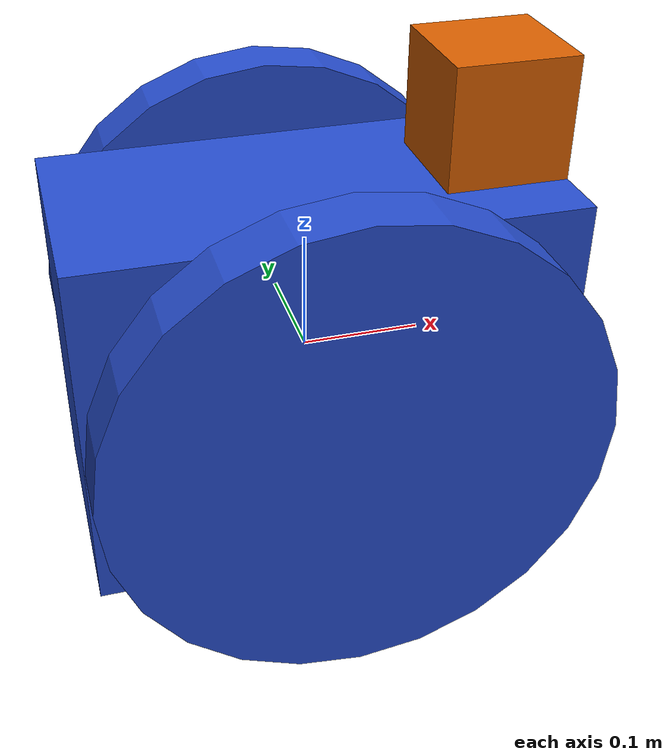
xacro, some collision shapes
<?xml version='1.0'?>

<robot name="my_robot" xmlns:xacro="http://www.ros.org/wiki/xacro">

  <xacro:include filename="$(find my_robot)/urdf/my_robot.gazebo" />

  <link name="robot_footprint"></link>

  <joint name="robot_footprint_joint" type="fixed">
    <origin xyz="0 0 0" rpy="0 0 0" />
    <parent link="robot_footprint"/>
    <child link="chassis" />
  </joint>

  <link name='chassis'>
    <pose>0 0 0.1 0 0 0</pose>

    <inertial>
      <mass value="15.0"/>
      <origin xyz="0.0 0 0" rpy=" 0 0 0"/>
      <inertia
          ixx="0.1" ixy="0" ixz="0"
          iyy="0.1" iyz="0"
          izz="0.1"
      />
    </inertial>

    <collision name='collision'>
      <origin xyz="0 0 0" rpy=" 0 0 0"/>
      <geometry>
        <box size=".4 .2 .3"/>
      </geometry>
    </collision>

    <visual name='chassis_visual'>
      <origin xyz="0 0 0" rpy=" 0 0 0"/>
      <geometry>
        <box size=".4 .2 .3"/>
      </geometry>
    </visual>

    <collision name='back_caster_collision'>
      <origin xyz="-0.15 0 -0.15" rpy=" 0 0 0"/>
      <geometry>
        <sphere radius="0.0499"/>
      </geometry>
    </collision>

    <visual name='back_caster_visual'>
      <origin xyz="-0.15 0 -0.15" rpy=" 0 0 0"/>
      <geometry>
        <sphere radius="0.05"/>
      </geometry>
    </visual>

    <collision name='front_caster_collision'>
      <origin xyz="0.15 0 -0.15" rpy=" 0 0 0"/>
      <geometry>
        <sphere radius="0.0499"/>
      </geometry>
    </collision>

    <visual name='front_caster_visual'>
      <origin xyz="0.15 0 -0.15" rpy=" 0 0 0"/>
      <geometry>
        <sphere radius="0.05"/>
      </geometry>
    </visual>
  </link>

  <link name="left_wheel">

    <visual name="left_wheel_vis">
      <origin xyz="0 0 0" rpy=" 0 1.5707 1.5707"/>
      <geometry>
        <cylinder radius="0.2" length="0.05"/>
      </geometry>
    </visual>

    <collision name='left_wheel_col'>
      <origin xyz="0 0 0" rpy=" 0 1.5707 1.5707"/>
      <geometry>
        <cylinder radius="0.2" length="0.05"/>
      </geometry>
    </collision>

    <inertial>
      <mass value="5.0"/>
      <origin xyz="0 0 0" rpy="0 0 0"/>
      <inertia
          ixx="0.1" ixy="0" ixz="0"
          iyy="0.1" iyz="0"
          izz="0.1"
      />
    </inertial>

  </link>

  <joint type="continuous" name="left_wheel_hinge">
    <origin xyz="0 0.15 0" rpy="0 0 0"/>
    <child link="left_wheel"/>
    <parent link="chassis"/>
    <axis xyz="0 1 0" rpy="0 0 0"/>
    <limit effort="10000" velocity="1000"/>
    <dynamics damping="1.0" friction="1.0"/>
  </joint>

  <link name="right_wheel">

    <visual name='right_wheel_vis'>
      <origin xyz="0 0 0" rpy=" 0 1.5707 1.5707"/>
      <geometry>
        <cylinder radius="0.2" length="0.05"/>
      </geometry>
    </visual>

    <collision name='right_wheel_col'>
      <origin xyz="0 0 0" rpy=" 0 1.5707 1.5707"/>
      <geometry>
        <cylinder radius="0.2" length="0.05"/>
      </geometry>
    </collision>

    <inertial>
      <mass value="5.0"/>
      <origin xyz="0 0 0" rpy="0 0 0"/>
      <inertia
          ixx="0.1" ixy="0" ixz="0"
          iyy="0.1" iyz="0"
          izz="0.1"
      />
    </inertial>

  </link>

  <joint type="continuous" name="right_wheel_hinge">
    <origin xyz="0 -0.15 0" rpy="0 0 0"/>
    <child link="right_wheel"/>
    <parent link="chassis"/>
    <axis xyz="0 1 0" rpy="0 0 0"/>
    <limit effort="10000" velocity="1000"/>
    <dynamics damping="1.0" friction="1.0"/>
  </joint>

  <link name="camera">

    <visual name='camera_vis'>
      <origin xyz="0 0 0" rpy=" 0 0 0"/>
      <geometry>
        <box size="0.05 0.05 0.05"/>
      </geometry>
    </visual>

    <collision name='camera_col'>
      <origin xyz="0 0 0" rpy=" 0 0 0"/>
      <geometry>
        <box size="0.05 0.05 0.05"/>
      </geometry>
    </collision>

    <inertial name="camera_intert">
      <mass value="0.1"/>
      <origin xyz="0.05 0.05 0.05" rpy="0 0 0"/>
      <inertia
          ixx="1e-6" ixy="0" ixz="0"
          iyy="1e-6" iyz="0"
          izz="1e-6"
      />
    </inertial>

  </link>

  <joint type="fixed" name="camera_joint">
    <origin xyz="0.2 0 0" rpy="0 0 0"/>
    <child link="camera"/>
    <parent link="chassis"/>
    <axis xyz="0 1 0" rpy="0 0 0"/>
  </joint>

  <link name="hokuyo">

    <collision name='hokuyo_col'>
      <origin xyz="0 0 0" rpy=" 0 0 0"/>
      <geometry>
        <box size="0.1 0.1 0.1"/>
      </geometry>
    </collision>

    <visual name='hokuyo_vis'>
      <origin xyz="0 0 0" rpy=" 0 0 0"/>
      <geometry>
        <mesh filename="package://my_robot/meshes/hokuyo.dae"/>
      </geometry>
    </visual>

    <inertial name="hokuyo_inert">
      <mass value="1e-5"/>
      <origin xyz="0 0 0" rpy="0 0 0"/>
      <inertia
          ixx="1e-6" ixy="0" ixz="0"
          iyy="1e-6" iyz="0"
          izz="1e-6"
      />
    </inertial>

  </link>

  <joint type="fixed" name="hokuyo_joint">
    <origin xyz="0.15 0 0.2" rpy="0 0 0"/>
    <child link="hokuyo"/>
    <parent link="chassis"/>
    <axis xyz="0 1 0" rpy="0 0 0"/>
  </joint>

</robot>
